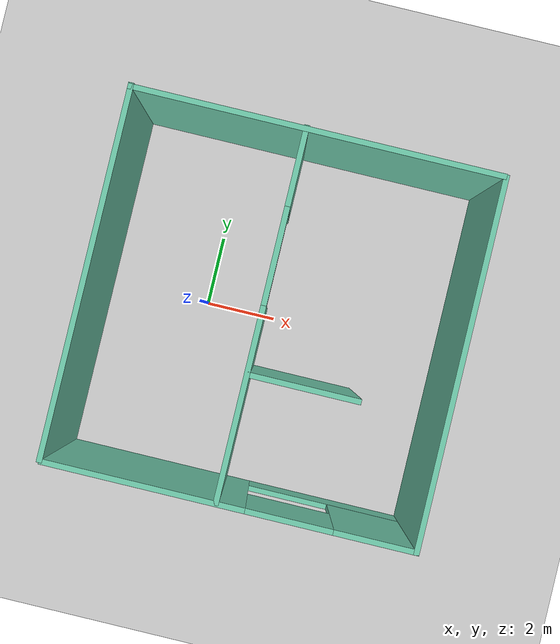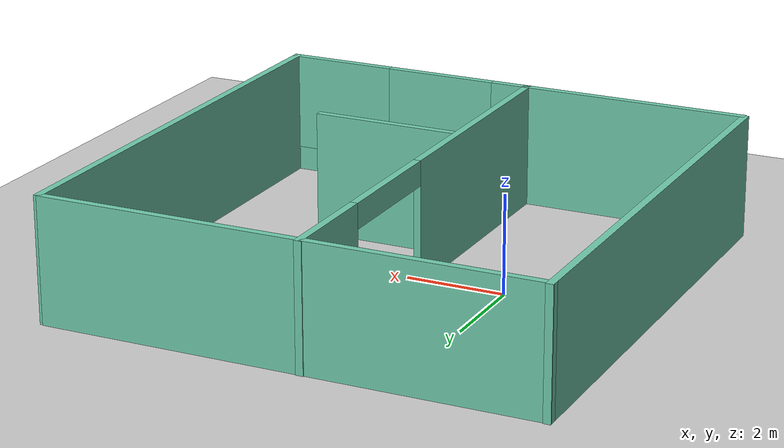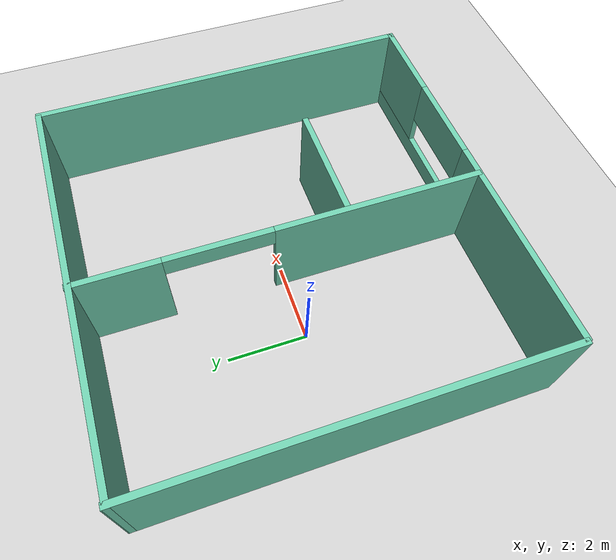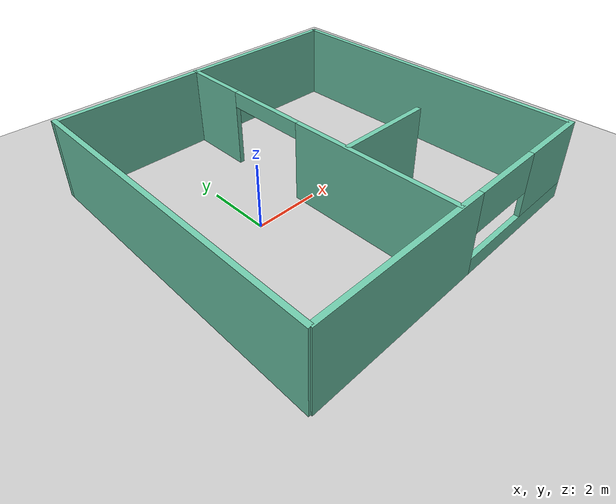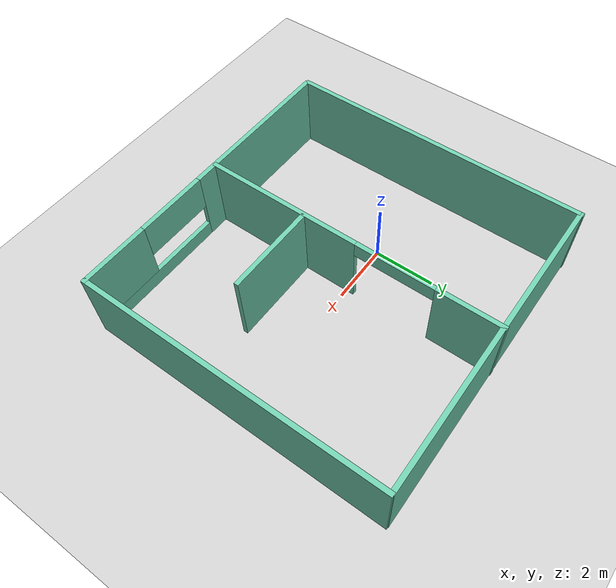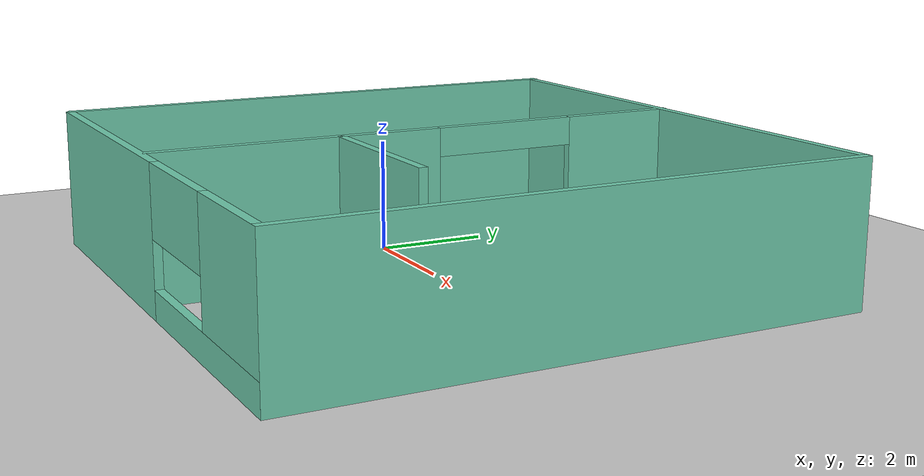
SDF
<sdf version="1.7">
 <world name="default">
  <light name="sun" type="directional">
   <pose>0 0 10 0 -0 0</pose>
   <diffuse>0.8 0.8 0.8 1</diffuse>
   <specular>0.2 0.2 0.2 1</specular>
   <attenuation>
    <range>1000</range>
    <constant>0.9</constant>
    <linear>0.01</linear>
    <quadratic>0.001</quadratic>
   </attenuation>
   <direction>-0.5 0.1 -0.9</direction>
   <spot><inner_angle>0</inner_angle><outer_angle>0</outer_angle><falloff>0</falloff></spot>
  </light>
  <model name="ground_plane">
   <static>1</static>
   <link name="link">
    <collision name="collision">
     <geometry><plane><normal>0 0 1</normal><size>100 100</size></plane></geometry>
     <surface><friction><ode><mu>100</mu><mu2>50</mu2></ode></friction></surface>
    </collision>
    <visual name="visual">
     <cast_shadows>0</cast_shadows>
     <geometry><plane><normal>0 0 1</normal><size>100 100</size></plane></geometry>
     <material>
      <script><uri>file://media/materials/scripts/gazebo.material</uri><name>Gazebo/Grey</name></script>
     </material>
    </visual>
   </link>
  </model>
  <gravity>0 0 -9.8</gravity>
  <magnetic_field>6e-06 2.3e-05 -4.2e-05</magnetic_field>
  <atmosphere type="adiabatic"/>
  <physics type="ode">
   <max_step_size>0.001</max_step_size>
   <real_time_factor>1</real_time_factor>
   <real_time_update_rate>1000</real_time_update_rate>
  </physics>
  <scene><ambient>0.4 0.4 0.4 1</ambient><background>0.7 0.7 0.7 1</background><shadows>1</shadows></scene>
  <audio><device>default</device></audio>
  <spherical_coordinates>
   <surface_model>EARTH_WGS84</surface_model>
   <latitude_deg>0</latitude_deg>
   <longitude_deg>0</longitude_deg>
   <elevation>0</elevation>
   <heading_deg>0</heading_deg>
  </spherical_coordinates>
  <model name="test_room_v0">
   <pose>2 0 0 0 -0 0</pose>
   <link name="Wall_1">
    <collision name="Wall_1_Collision">
     <geometry><box><size>10 0.15 2.5</size></box></geometry>
     <pose>0 0 1.25 0 -0 0</pose>
    </collision>
    <visual name="Wall_1_Visual">
     <pose>0 0 1.25 0 -0 0</pose>
     <geometry><box><size>10 0.15 2.5</size></box></geometry>
     <material>
      <script><uri>file://media/materials/scripts/gazebo.material</uri><name>Gazebo/Grey</name></script>
      <ambient>0.435294 0.796078 0.67451 1</ambient>
     </material>
     <meta><layer>0</layer></meta>
    </visual>
    <pose>-4.9572 0.019647 0 0 -0 -1.5708</pose>
   </link>
   <link name="Wall_11">
    <collision name="Wall_11_Collision">
     <geometry><box><size>10 0.15 2.5</size></box></geometry>
     <pose>0 0 1.25 0 -0 0</pose>
    </collision>
    <visual name="Wall_11_Visual">
     <pose>0 0 1.25 0 -0 0</pose>
     <geometry><box><size>10 0.15 2.5</size></box></geometry>
     <material>
      <script><uri>file://media/materials/scripts/gazebo.material</uri><name>Gazebo/Grey</name></script>
      <ambient>0.435294 0.796078 0.67451 1</ambient>
     </material>
     <meta><layer>0</layer></meta>
    </visual>
    <pose>-0.032198 4.92152 0 0 -0 3.14159</pose>
   </link>
   <link name="Wall_3">
    <pose>0.032197 -4.94465 0 0 -0 0</pose>
    <visual name="Wall_3_Visual_0">
     <pose>-2.29479 0 1.25 0 -0 0</pose>
     <geometry><box><size>5.41043 0.15 2.5</size></box></geometry>
     <material>
      <script><uri>file://media/materials/scripts/gazebo.material</uri><name>Gazebo/Grey</name></script>
      <ambient>0.435294 0.796078 0.67451 1</ambient>
     </material>
     <meta><layer>0</layer></meta>
    </visual>
    <collision name="Wall_3_Collision_0">
     <geometry><box><size>5.41043 0.15 2.5</size></box></geometry>
     <pose>-2.29479 0 1.25 0 -0 0</pose>
    </collision>
    <visual name="Wall_3_Visual_1">
     <pose>2.70521 0 0.25 0 -0 0</pose>
     <geometry><box><size>4.58957 0.15 0.5</size></box></geometry>
     <material>
      <script><uri>file://media/materials/scripts/gazebo.material</uri><name>Gazebo/Grey</name></script>
      <ambient>0.435294 0.796078 0.67451 1</ambient>
     </material>
     <meta><layer>0</layer></meta>
    </visual>
    <collision name="Wall_3_Collision_1">
     <geometry><box><size>4.58957 0.15 0.5</size></box></geometry>
     <pose>2.70521 0 0.25 0 -0 0</pose>
    </collision>
    <visual name="Wall_3_Visual_2">
     <pose>3.86565 0 1.5 0 -0 0</pose>
     <geometry><box><size>2.2687 0.15 2</size></box></geometry>
     <material>
      <script><uri>file://media/materials/scripts/gazebo.material</uri><name>Gazebo/Grey</name></script>
      <ambient>0.435294 0.796078 0.67451 1</ambient>
     </material>
     <meta><layer>0</layer></meta>
    </visual>
    <collision name="Wall_3_Collision_2">
     <geometry><box><size>2.2687 0.15 2</size></box></geometry>
     <pose>3.86565 0 1.5 0 -0 0</pose>
    </collision>
    <visual name="Wall_3_Visual_3">
     <pose>1.57087 0 1.9 0 -0 0</pose>
     <geometry><box><size>2.32088 0.15 1.2</size></box></geometry>
     <material>
      <script><uri>file://media/materials/scripts/gazebo.material</uri><name>Gazebo/Grey</name></script>
      <ambient>0.435294 0.796078 0.67451 1</ambient>
     </material>
     <meta><layer>0</layer></meta>
    </visual>
    <collision name="Wall_3_Collision_3">
     <geometry><box><size>2.32088 0.15 1.2</size></box></geometry>
     <pose>1.57087 0 1.9 0 -0 0</pose>
    </collision>
   </link>
   <link name="Wall_4">
    <collision name="Wall_4_Collision">
     <geometry><box><size>10 0.15 2.5</size></box></geometry>
     <pose>0 0 1.25 0 -0 0</pose>
    </collision>
    <visual name="Wall_4_Visual">
     <pose>0 0 1.25 0 -0 0</pose>
     <geometry><box><size>10 0.15 2.5</size></box></geometry>
     <material>
      <script><uri>file://media/materials/scripts/gazebo.material</uri><name>Gazebo/Grey</name></script>
      <ambient>0.435294 0.796078 0.67451 1</ambient>
     </material>
     <meta><layer>0</layer></meta>
    </visual>
    <pose>4.9572 -0.019647 0 0 -0 1.5708</pose>
   </link>
   <link name="Wall_7">
    <pose>-0.319926 0.017951 0 0 -0 -1.5708</pose>
    <visual name="Wall_7_Visual_0">
     <pose>-3.92673 0 1.25 0 -0 0</pose>
     <geometry><box><size>2.14653 0.15 2.5</size></box></geometry>
     <material>
      <script><uri>file://media/materials/scripts/gazebo.material</uri><name>Gazebo/Grey</name></script>
      <ambient>0.435294 0.796078 0.67451 1</ambient>
     </material>
     <meta><layer>0</layer></meta>
    </visual>
    <collision name="Wall_7_Collision_0">
     <geometry><box><size>2.14653 0.15 2.5</size></box></geometry>
     <pose>-3.92673 0 1.25 0 -0 0</pose>
    </collision>
    <visual name="Wall_7_Visual_1">
     <pose>2.37809 0 1.25 0 -0 0</pose>
     <geometry><box><size>5.24382 0.15 2.5</size></box></geometry>
     <material>
      <script><uri>file://media/materials/scripts/gazebo.material</uri><name>Gazebo/Grey</name></script>
      <ambient>0.435294 0.796078 0.67451 1</ambient>
     </material>
     <meta><layer>0</layer></meta>
    </visual>
    <collision name="Wall_7_Collision_1">
     <geometry><box><size>5.24382 0.15 2.5</size></box></geometry>
     <pose>2.37809 0 1.25 0 -0 0</pose>
    </collision>
    <visual name="Wall_7_Visual_2">
     <pose>-1.54864 0 2.25 0 -0 0</pose>
     <geometry><box><size>2.60965 0.15 0.5</size></box></geometry>
     <material>
      <script><uri>file://media/materials/scripts/gazebo.material</uri><name>Gazebo/Grey</name></script>
      <ambient>0.435294 0.796078 0.67451 1</ambient>
     </material>
     <meta><layer>0</layer></meta>
    </visual>
    <collision name="Wall_7_Collision_2">
     <geometry><box><size>2.60965 0.15 0.5</size></box></geometry>
     <pose>-1.54864 0 2.25 0 -0 0</pose>
    </collision>
   </link>
   <link name="Wall_9">
    <collision name="Wall_9_Collision">
     <geometry><box><size>3 0.15 2.5</size></box></geometry>
     <pose>0 0 1.25 0 -0 0</pose>
    </collision>
    <visual name="Wall_9_Visual">
     <pose>0 0 1.25 0 -0 0</pose>
     <geometry><box><size>3 0.15 2.5</size></box></geometry>
     <material>
      <script><uri>file://media/materials/scripts/gazebo.material</uri><name>Gazebo/Grey</name></script>
      <ambient>0.435294 0.796078 0.67451 1</ambient>
     </material>
     <meta><layer>0</layer></meta>
    </visual>
    <pose>1.19076 -1.55194 0 0 -0 0</pose>
   </link>
   <static>1</static>
  </model>
 </world>
</sdf>
